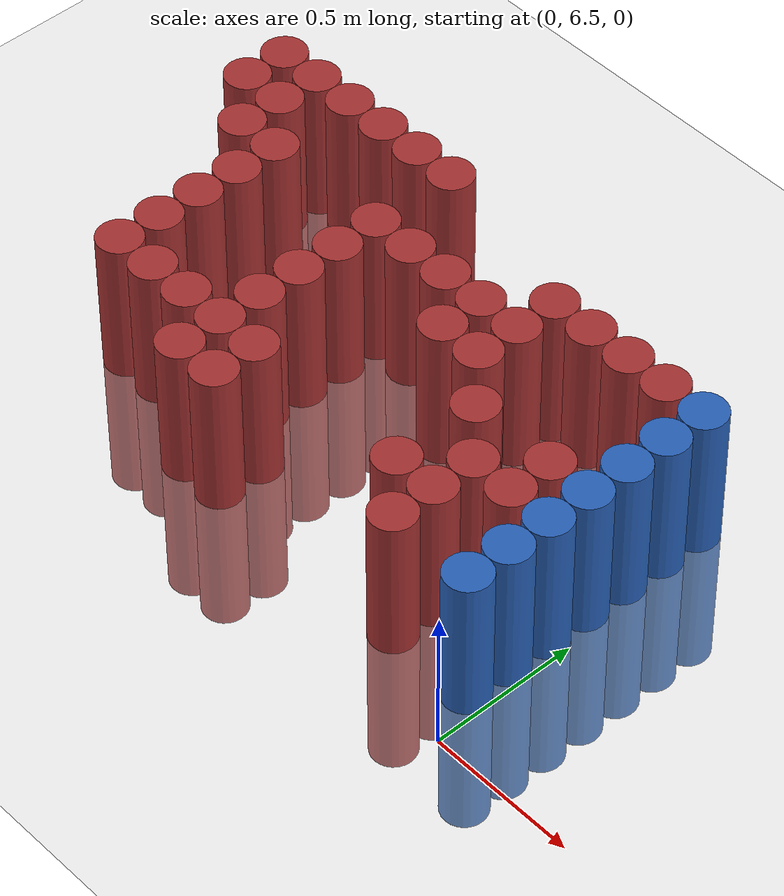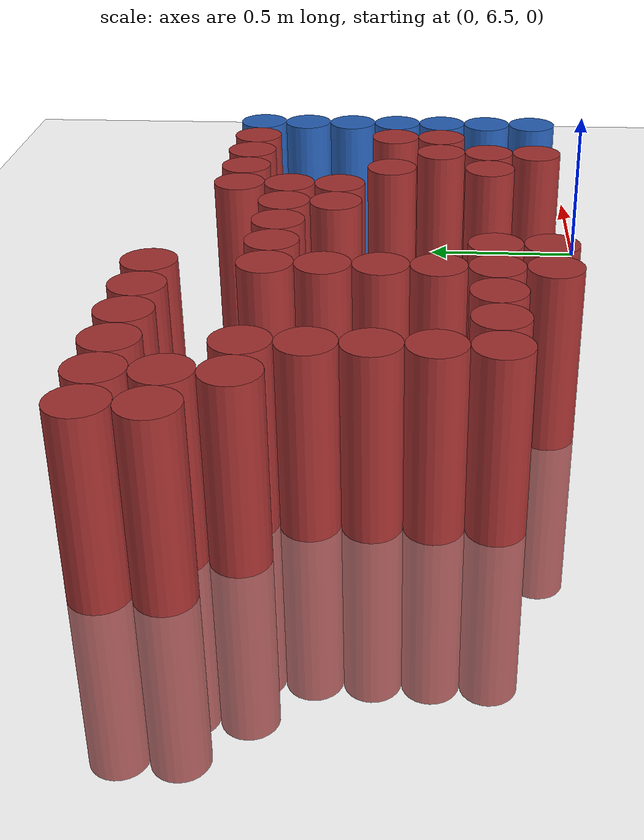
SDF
<sdf version="1.6">
 <world name="default">
  <model name="ground_plane">
   <static>1</static>
   <link name="link">
    <collision name="collision">
     <geometry><plane><normal>0 0 1</normal><size>100 100</size></plane></geometry>
     <surface><friction><ode><mu>100</mu><mu2>50</mu2></ode></friction></surface>
    </collision>
    <visual name="visual">
     <cast_shadows>0</cast_shadows>
     <geometry><plane><normal>0 0 1</normal><size>100 100</size></plane></geometry>
     <material>
      <script><uri>file://media/materials/scripts/gazebo.material</uri><name>Gazebo/Grey</name></script>
     </material>
    </visual>
   </link>
  </model>
  <model name="unit_cylinder_169">
   <static>1</static>
   <pose>-2.025000 7.575000 0.000000 0.000000 0.000000 0.000000</pose>
   <link name="link">
    <inertial>
     <mass>1</mass>
     <inertia><ixx>0.145833</ixx><ixy>0</ixy><ixz>0</ixz><iyy>0.145833</iyy><iyz>0</iyz><izz>0.125</izz></inertia>
    </inertial>
    <collision name="collision">
     <geometry><cylinder><radius>0.075000</radius><length>1</length></cylinder></geometry>
    </collision>
    <visual name="visual">
     <geometry><cylinder><radius>0.075000</radius><length>1</length></cylinder></geometry>
     <material>
      <ambient>0.648000 0.192000 0.192000 1</ambient>
      <diffuse>0.648000 0.192000 0.192000 1</diffuse>
     </material>
     <material>
      <script><name>Gazebo/Grey</name><uri>file://media/materials/scripts/gazebo.material</uri></script>
     </material>
    </visual>
   </link>
  </model>
  <model name="unit_cylinder_170">
   <static>1</static>
   <pose>-2.025000 7.725000 0.000000 0.000000 0.000000 0.000000</pose>
   <link name="link">
    <inertial>
     <mass>1</mass>
     <inertia><ixx>0.145833</ixx><ixy>0</ixy><ixz>0</ixz><iyy>0.145833</iyy><iyz>0</iyz><izz>0.125</izz></inertia>
    </inertial>
    <collision name="collision">
     <geometry><cylinder><radius>0.075000</radius><length>1</length></cylinder></geometry>
    </collision>
    <visual name="visual">
     <geometry><cylinder><radius>0.075000</radius><length>1</length></cylinder></geometry>
     <material>
      <ambient>0.648000 0.192000 0.192000 1</ambient>
      <diffuse>0.648000 0.192000 0.192000 1</diffuse>
     </material>
     <material>
      <script><name>Gazebo/Grey</name><uri>file://media/materials/scripts/gazebo.material</uri></script>
     </material>
    </visual>
   </link>
  </model>
  <model name="unit_cylinder_173">
   <static>1</static>
   <pose>-1.875000 7.425000 0.000000 0.000000 0.000000 0.000000</pose>
   <link name="link">
    <inertial>
     <mass>1</mass>
     <inertia><ixx>0.145833</ixx><ixy>0</ixy><ixz>0</ixz><iyy>0.145833</iyy><iyz>0</iyz><izz>0.125</izz></inertia>
    </inertial>
    <collision name="collision">
     <geometry><cylinder><radius>0.075000</radius><length>1</length></cylinder></geometry>
    </collision>
    <visual name="visual">
     <geometry><cylinder><radius>0.075000</radius><length>1</length></cylinder></geometry>
     <material>
      <ambient>0.648000 0.192000 0.192000 1</ambient>
      <diffuse>0.648000 0.192000 0.192000 1</diffuse>
     </material>
     <material>
      <script><name>Gazebo/Grey</name><uri>file://media/materials/scripts/gazebo.material</uri></script>
     </material>
    </visual>
   </link>
  </model>
  <model name="unit_cylinder_174">
   <static>1</static>
   <pose>-1.875000 7.575000 0.000000 0.000000 0.000000 0.000000</pose>
   <link name="link">
    <inertial>
     <mass>1</mass>
     <inertia><ixx>0.145833</ixx><ixy>0</ixy><ixz>0</ixz><iyy>0.145833</iyy><iyz>0</iyz><izz>0.125</izz></inertia>
    </inertial>
    <collision name="collision">
     <geometry><cylinder><radius>0.075000</radius><length>1</length></cylinder></geometry>
    </collision>
    <visual name="visual">
     <geometry><cylinder><radius>0.075000</radius><length>1</length></cylinder></geometry>
     <material>
      <ambient>0.648000 0.192000 0.192000 1</ambient>
      <diffuse>0.648000 0.192000 0.192000 1</diffuse>
     </material>
     <material>
      <script><name>Gazebo/Grey</name><uri>file://media/materials/scripts/gazebo.material</uri></script>
     </material>
    </visual>
   </link>
  </model>
  <model name="unit_cylinder_175">
   <static>1</static>
   <pose>-1.875000 7.725000 0.000000 0.000000 0.000000 0.000000</pose>
   <link name="link">
    <inertial>
     <mass>1</mass>
     <inertia><ixx>0.145833</ixx><ixy>0</ixy><ixz>0</ixz><iyy>0.145833</iyy><iyz>0</iyz><izz>0.125</izz></inertia>
    </inertial>
    <collision name="collision">
     <geometry><cylinder><radius>0.075000</radius><length>1</length></cylinder></geometry>
    </collision>
    <visual name="visual">
     <geometry><cylinder><radius>0.075000</radius><length>1</length></cylinder></geometry>
     <material>
      <ambient>0.648000 0.192000 0.192000 1</ambient>
      <diffuse>0.648000 0.192000 0.192000 1</diffuse>
     </material>
     <material>
      <script><name>Gazebo/Grey</name><uri>file://media/materials/scripts/gazebo.material</uri></script>
     </material>
    </visual>
   </link>
  </model>
  <model name="unit_cylinder_182">
   <static>1</static>
   <pose>-1.725000 6.825000 0.000000 0.000000 0.000000 0.000000</pose>
   <link name="link">
    <inertial>
     <mass>1</mass>
     <inertia><ixx>0.145833</ixx><ixy>0</ixy><ixz>0</ixz><iyy>0.145833</iyy><iyz>0</iyz><izz>0.125</izz></inertia>
    </inertial>
    <collision name="collision">
     <geometry><cylinder><radius>0.075000</radius><length>1</length></cylinder></geometry>
    </collision>
    <visual name="visual">
     <geometry><cylinder><radius>0.075000</radius><length>1</length></cylinder></geometry>
     <material>
      <ambient>0.648000 0.192000 0.192000 1</ambient>
      <diffuse>0.648000 0.192000 0.192000 1</diffuse>
     </material>
     <material>
      <script><name>Gazebo/Grey</name><uri>file://media/materials/scripts/gazebo.material</uri></script>
     </material>
    </visual>
   </link>
  </model>
  <model name="unit_cylinder_183">
   <static>1</static>
   <pose>-1.725000 6.975000 0.000000 0.000000 0.000000 0.000000</pose>
   <link name="link">
    <inertial>
     <mass>1</mass>
     <inertia><ixx>0.145833</ixx><ixy>0</ixy><ixz>0</ixz><iyy>0.145833</iyy><iyz>0</iyz><izz>0.125</izz></inertia>
    </inertial>
    <collision name="collision">
     <geometry><cylinder><radius>0.075000</radius><length>1</length></cylinder></geometry>
    </collision>
    <visual name="visual">
     <geometry><cylinder><radius>0.075000</radius><length>1</length></cylinder></geometry>
     <material>
      <ambient>0.648000 0.192000 0.192000 1</ambient>
      <diffuse>0.648000 0.192000 0.192000 1</diffuse>
     </material>
     <material>
      <script><name>Gazebo/Grey</name><uri>file://media/materials/scripts/gazebo.material</uri></script>
     </material>
    </visual>
   </link>
  </model>
  <model name="unit_cylinder_184">
   <static>1</static>
   <pose>-1.725000 7.125000 0.000000 0.000000 0.000000 0.000000</pose>
   <link name="link">
    <inertial>
     <mass>1</mass>
     <inertia><ixx>0.145833</ixx><ixy>0</ixy><ixz>0</ixz><iyy>0.145833</iyy><iyz>0</iyz><izz>0.125</izz></inertia>
    </inertial>
    <collision name="collision">
     <geometry><cylinder><radius>0.075000</radius><length>1</length></cylinder></geometry>
    </collision>
    <visual name="visual">
     <geometry><cylinder><radius>0.075000</radius><length>1</length></cylinder></geometry>
     <material>
      <ambient>0.648000 0.192000 0.192000 1</ambient>
      <diffuse>0.648000 0.192000 0.192000 1</diffuse>
     </material>
     <material>
      <script><name>Gazebo/Grey</name><uri>file://media/materials/scripts/gazebo.material</uri></script>
     </material>
    </visual>
   </link>
  </model>
  <model name="unit_cylinder_185">
   <static>1</static>
   <pose>-1.725000 7.275000 0.000000 0.000000 0.000000 0.000000</pose>
   <link name="link">
    <inertial>
     <mass>1</mass>
     <inertia><ixx>0.145833</ixx><ixy>0</ixy><ixz>0</ixz><iyy>0.145833</iyy><iyz>0</iyz><izz>0.125</izz></inertia>
    </inertial>
    <collision name="collision">
     <geometry><cylinder><radius>0.075000</radius><length>1</length></cylinder></geometry>
    </collision>
    <visual name="visual">
     <geometry><cylinder><radius>0.075000</radius><length>1</length></cylinder></geometry>
     <material>
      <ambient>0.648000 0.192000 0.192000 1</ambient>
      <diffuse>0.648000 0.192000 0.192000 1</diffuse>
     </material>
     <material>
      <script><name>Gazebo/Grey</name><uri>file://media/materials/scripts/gazebo.material</uri></script>
     </material>
    </visual>
   </link>
  </model>
  <model name="unit_cylinder_186">
   <static>1</static>
   <pose>-1.725000 7.425000 0.000000 0.000000 0.000000 0.000000</pose>
   <link name="link">
    <inertial>
     <mass>1</mass>
     <inertia><ixx>0.145833</ixx><ixy>0</ixy><ixz>0</ixz><iyy>0.145833</iyy><iyz>0</iyz><izz>0.125</izz></inertia>
    </inertial>
    <collision name="collision">
     <geometry><cylinder><radius>0.075000</radius><length>1</length></cylinder></geometry>
    </collision>
    <visual name="visual">
     <geometry><cylinder><radius>0.075000</radius><length>1</length></cylinder></geometry>
     <material>
      <ambient>0.648000 0.192000 0.192000 1</ambient>
      <diffuse>0.648000 0.192000 0.192000 1</diffuse>
     </material>
     <material>
      <script><name>Gazebo/Grey</name><uri>file://media/materials/scripts/gazebo.material</uri></script>
     </material>
    </visual>
   </link>
  </model>
  <model name="unit_cylinder_187">
   <static>1</static>
   <pose>-1.725000 7.725000 0.000000 0.000000 0.000000 0.000000</pose>
   <link name="link">
    <inertial>
     <mass>1</mass>
     <inertia><ixx>0.145833</ixx><ixy>0</ixy><ixz>0</ixz><iyy>0.145833</iyy><iyz>0</iyz><izz>0.125</izz></inertia>
    </inertial>
    <collision name="collision">
     <geometry><cylinder><radius>0.075000</radius><length>1</length></cylinder></geometry>
    </collision>
    <visual name="visual">
     <geometry><cylinder><radius>0.075000</radius><length>1</length></cylinder></geometry>
     <material>
      <ambient>0.648000 0.192000 0.192000 1</ambient>
      <diffuse>0.648000 0.192000 0.192000 1</diffuse>
     </material>
     <material>
      <script><name>Gazebo/Grey</name><uri>file://media/materials/scripts/gazebo.material</uri></script>
     </material>
    </visual>
   </link>
  </model>
  <model name="unit_cylinder_191">
   <static>1</static>
   <pose>-1.575000 6.825000 0.000000 0.000000 0.000000 0.000000</pose>
   <link name="link">
    <inertial>
     <mass>1</mass>
     <inertia><ixx>0.145833</ixx><ixy>0</ixy><ixz>0</ixz><iyy>0.145833</iyy><iyz>0</iyz><izz>0.125</izz></inertia>
    </inertial>
    <collision name="collision">
     <geometry><cylinder><radius>0.075000</radius><length>1</length></cylinder></geometry>
    </collision>
    <visual name="visual">
     <geometry><cylinder><radius>0.075000</radius><length>1</length></cylinder></geometry>
     <material>
      <ambient>0.648000 0.192000 0.192000 1</ambient>
      <diffuse>0.648000 0.192000 0.192000 1</diffuse>
     </material>
     <material>
      <script><name>Gazebo/Grey</name><uri>file://media/materials/scripts/gazebo.material</uri></script>
     </material>
    </visual>
   </link>
  </model>
  <model name="unit_cylinder_192">
   <static>1</static>
   <pose>-1.575000 7.725000 0.000000 0.000000 0.000000 0.000000</pose>
   <link name="link">
    <inertial>
     <mass>1</mass>
     <inertia><ixx>0.145833</ixx><ixy>0</ixy><ixz>0</ixz><iyy>0.145833</iyy><iyz>0</iyz><izz>0.125</izz></inertia>
    </inertial>
    <collision name="collision">
     <geometry><cylinder><radius>0.075000</radius><length>1</length></cylinder></geometry>
    </collision>
    <visual name="visual">
     <geometry><cylinder><radius>0.075000</radius><length>1</length></cylinder></geometry>
     <material>
      <ambient>0.648000 0.192000 0.192000 1</ambient>
      <diffuse>0.648000 0.192000 0.192000 1</diffuse>
     </material>
     <material>
      <script><name>Gazebo/Grey</name><uri>file://media/materials/scripts/gazebo.material</uri></script>
     </material>
    </visual>
   </link>
  </model>
  <model name="unit_cylinder_195">
   <static>1</static>
   <pose>-1.425000 6.825000 0.000000 0.000000 0.000000 0.000000</pose>
   <link name="link">
    <inertial>
     <mass>1</mass>
     <inertia><ixx>0.145833</ixx><ixy>0</ixy><ixz>0</ixz><iyy>0.145833</iyy><iyz>0</iyz><izz>0.125</izz></inertia>
    </inertial>
    <collision name="collision">
     <geometry><cylinder><radius>0.075000</radius><length>1</length></cylinder></geometry>
    </collision>
    <visual name="visual">
     <geometry><cylinder><radius>0.075000</radius><length>1</length></cylinder></geometry>
     <material>
      <ambient>0.648000 0.192000 0.192000 1</ambient>
      <diffuse>0.648000 0.192000 0.192000 1</diffuse>
     </material>
     <material>
      <script><name>Gazebo/Grey</name><uri>file://media/materials/scripts/gazebo.material</uri></script>
     </material>
    </visual>
   </link>
  </model>
  <model name="unit_cylinder_196">
   <static>1</static>
   <pose>-1.425000 7.725000 0.000000 0.000000 0.000000 0.000000</pose>
   <link name="link">
    <inertial>
     <mass>1</mass>
     <inertia><ixx>0.145833</ixx><ixy>0</ixy><ixz>0</ixz><iyy>0.145833</iyy><iyz>0</iyz><izz>0.125</izz></inertia>
    </inertial>
    <collision name="collision">
     <geometry><cylinder><radius>0.075000</radius><length>1</length></cylinder></geometry>
    </collision>
    <visual name="visual">
     <geometry><cylinder><radius>0.075000</radius><length>1</length></cylinder></geometry>
     <material>
      <ambient>0.648000 0.192000 0.192000 1</ambient>
      <diffuse>0.648000 0.192000 0.192000 1</diffuse>
     </material>
     <material>
      <script><name>Gazebo/Grey</name><uri>file://media/materials/scripts/gazebo.material</uri></script>
     </material>
    </visual>
   </link>
  </model>
  <model name="unit_cylinder_199">
   <static>1</static>
   <pose>-1.275000 6.675000 0.000000 0.000000 0.000000 0.000000</pose>
   <link name="link">
    <inertial>
     <mass>1</mass>
     <inertia><ixx>0.145833</ixx><ixy>0</ixy><ixz>0</ixz><iyy>0.145833</iyy><iyz>0</iyz><izz>0.125</izz></inertia>
    </inertial>
    <collision name="collision">
     <geometry><cylinder><radius>0.075000</radius><length>1</length></cylinder></geometry>
    </collision>
    <visual name="visual">
     <geometry><cylinder><radius>0.075000</radius><length>1</length></cylinder></geometry>
     <material>
      <ambient>0.648000 0.192000 0.192000 1</ambient>
      <diffuse>0.648000 0.192000 0.192000 1</diffuse>
     </material>
     <material>
      <script><name>Gazebo/Grey</name><uri>file://media/materials/scripts/gazebo.material</uri></script>
     </material>
    </visual>
   </link>
  </model>
  <model name="unit_cylinder_200">
   <static>1</static>
   <pose>-1.275000 6.825000 0.000000 0.000000 0.000000 0.000000</pose>
   <link name="link">
    <inertial>
     <mass>1</mass>
     <inertia><ixx>0.145833</ixx><ixy>0</ixy><ixz>0</ixz><iyy>0.145833</iyy><iyz>0</iyz><izz>0.125</izz></inertia>
    </inertial>
    <collision name="collision">
     <geometry><cylinder><radius>0.075000</radius><length>1</length></cylinder></geometry>
    </collision>
    <visual name="visual">
     <geometry><cylinder><radius>0.075000</radius><length>1</length></cylinder></geometry>
     <material>
      <ambient>0.648000 0.192000 0.192000 1</ambient>
      <diffuse>0.648000 0.192000 0.192000 1</diffuse>
     </material>
     <material>
      <script><name>Gazebo/Grey</name><uri>file://media/materials/scripts/gazebo.material</uri></script>
     </material>
    </visual>
   </link>
  </model>
  <model name="unit_cylinder_201">
   <static>1</static>
   <pose>-1.275000 6.975000 0.000000 0.000000 0.000000 0.000000</pose>
   <link name="link">
    <inertial>
     <mass>1</mass>
     <inertia><ixx>0.145833</ixx><ixy>0</ixy><ixz>0</ixz><iyy>0.145833</iyy><iyz>0</iyz><izz>0.125</izz></inertia>
    </inertial>
    <collision name="collision">
     <geometry><cylinder><radius>0.075000</radius><length>1</length></cylinder></geometry>
    </collision>
    <visual name="visual">
     <geometry><cylinder><radius>0.075000</radius><length>1</length></cylinder></geometry>
     <material>
      <ambient>0.648000 0.192000 0.192000 1</ambient>
      <diffuse>0.648000 0.192000 0.192000 1</diffuse>
     </material>
     <material>
      <script><name>Gazebo/Grey</name><uri>file://media/materials/scripts/gazebo.material</uri></script>
     </material>
    </visual>
   </link>
  </model>
  <model name="unit_cylinder_202">
   <static>1</static>
   <pose>-1.275000 7.125000 0.000000 0.000000 0.000000 0.000000</pose>
   <link name="link">
    <inertial>
     <mass>1</mass>
     <inertia><ixx>0.145833</ixx><ixy>0</ixy><ixz>0</ixz><iyy>0.145833</iyy><iyz>0</iyz><izz>0.125</izz></inertia>
    </inertial>
    <collision name="collision">
     <geometry><cylinder><radius>0.075000</radius><length>1</length></cylinder></geometry>
    </collision>
    <visual name="visual">
     <geometry><cylinder><radius>0.075000</radius><length>1</length></cylinder></geometry>
     <material>
      <ambient>0.648000 0.192000 0.192000 1</ambient>
      <diffuse>0.648000 0.192000 0.192000 1</diffuse>
     </material>
     <material>
      <script><name>Gazebo/Grey</name><uri>file://media/materials/scripts/gazebo.material</uri></script>
     </material>
    </visual>
   </link>
  </model>
  <model name="unit_cylinder_203">
   <static>1</static>
   <pose>-1.275000 7.275000 0.000000 0.000000 0.000000 0.000000</pose>
   <link name="link">
    <inertial>
     <mass>1</mass>
     <inertia><ixx>0.145833</ixx><ixy>0</ixy><ixz>0</ixz><iyy>0.145833</iyy><iyz>0</iyz><izz>0.125</izz></inertia>
    </inertial>
    <collision name="collision">
     <geometry><cylinder><radius>0.075000</radius><length>1</length></cylinder></geometry>
    </collision>
    <visual name="visual">
     <geometry><cylinder><radius>0.075000</radius><length>1</length></cylinder></geometry>
     <material>
      <ambient>0.648000 0.192000 0.192000 1</ambient>
      <diffuse>0.648000 0.192000 0.192000 1</diffuse>
     </material>
     <material>
      <script><name>Gazebo/Grey</name><uri>file://media/materials/scripts/gazebo.material</uri></script>
     </material>
    </visual>
   </link>
  </model>
  <model name="unit_cylinder_204">
   <static>1</static>
   <pose>-1.275000 7.425000 0.000000 0.000000 0.000000 0.000000</pose>
   <link name="link">
    <inertial>
     <mass>1</mass>
     <inertia><ixx>0.145833</ixx><ixy>0</ixy><ixz>0</ixz><iyy>0.145833</iyy><iyz>0</iyz><izz>0.125</izz></inertia>
    </inertial>
    <collision name="collision">
     <geometry><cylinder><radius>0.075000</radius><length>1</length></cylinder></geometry>
    </collision>
    <visual name="visual">
     <geometry><cylinder><radius>0.075000</radius><length>1</length></cylinder></geometry>
     <material>
      <ambient>0.648000 0.192000 0.192000 1</ambient>
      <diffuse>0.648000 0.192000 0.192000 1</diffuse>
     </material>
     <material>
      <script><name>Gazebo/Grey</name><uri>file://media/materials/scripts/gazebo.material</uri></script>
     </material>
    </visual>
   </link>
  </model>
  <model name="unit_cylinder_205">
   <static>1</static>
   <pose>-1.275000 7.725000 0.000000 0.000000 0.000000 0.000000</pose>
   <link name="link">
    <inertial>
     <mass>1</mass>
     <inertia><ixx>0.145833</ixx><ixy>0</ixy><ixz>0</ixz><iyy>0.145833</iyy><iyz>0</iyz><izz>0.125</izz></inertia>
    </inertial>
    <collision name="collision">
     <geometry><cylinder><radius>0.075000</radius><length>1</length></cylinder></geometry>
    </collision>
    <visual name="visual">
     <geometry><cylinder><radius>0.075000</radius><length>1</length></cylinder></geometry>
     <material>
      <ambient>0.648000 0.192000 0.192000 1</ambient>
      <diffuse>0.648000 0.192000 0.192000 1</diffuse>
     </material>
     <material>
      <script><name>Gazebo/Grey</name><uri>file://media/materials/scripts/gazebo.material</uri></script>
     </material>
    </visual>
   </link>
  </model>
  <model name="unit_cylinder_207">
   <static>1</static>
   <pose>-1.125000 6.675000 0.000000 0.000000 0.000000 0.000000</pose>
   <link name="link">
    <inertial>
     <mass>1</mass>
     <inertia><ixx>0.145833</ixx><ixy>0</ixy><ixz>0</ixz><iyy>0.145833</iyy><iyz>0</iyz><izz>0.125</izz></inertia>
    </inertial>
    <collision name="collision">
     <geometry><cylinder><radius>0.075000</radius><length>1</length></cylinder></geometry>
    </collision>
    <visual name="visual">
     <geometry><cylinder><radius>0.075000</radius><length>1</length></cylinder></geometry>
     <material>
      <ambient>0.648000 0.192000 0.192000 1</ambient>
      <diffuse>0.648000 0.192000 0.192000 1</diffuse>
     </material>
     <material>
      <script><name>Gazebo/Grey</name><uri>file://media/materials/scripts/gazebo.material</uri></script>
     </material>
    </visual>
   </link>
  </model>
  <model name="unit_cylinder_208">
   <static>1</static>
   <pose>-1.125000 6.825000 0.000000 0.000000 0.000000 0.000000</pose>
   <link name="link">
    <inertial>
     <mass>1</mass>
     <inertia><ixx>0.145833</ixx><ixy>0</ixy><ixz>0</ixz><iyy>0.145833</iyy><iyz>0</iyz><izz>0.125</izz></inertia>
    </inertial>
    <collision name="collision">
     <geometry><cylinder><radius>0.075000</radius><length>1</length></cylinder></geometry>
    </collision>
    <visual name="visual">
     <geometry><cylinder><radius>0.075000</radius><length>1</length></cylinder></geometry>
     <material>
      <ambient>0.648000 0.192000 0.192000 1</ambient>
      <diffuse>0.648000 0.192000 0.192000 1</diffuse>
     </material>
     <material>
      <script><name>Gazebo/Grey</name><uri>file://media/materials/scripts/gazebo.material</uri></script>
     </material>
    </visual>
   </link>
  </model>
  <model name="unit_cylinder_209">
   <static>1</static>
   <pose>-1.125000 7.425000 0.000000 0.000000 0.000000 0.000000</pose>
   <link name="link">
    <inertial>
     <mass>1</mass>
     <inertia><ixx>0.145833</ixx><ixy>0</ixy><ixz>0</ixz><iyy>0.145833</iyy><iyz>0</iyz><izz>0.125</izz></inertia>
    </inertial>
    <collision name="collision">
     <geometry><cylinder><radius>0.075000</radius><length>1</length></cylinder></geometry>
    </collision>
    <visual name="visual">
     <geometry><cylinder><radius>0.075000</radius><length>1</length></cylinder></geometry>
     <material>
      <ambient>0.648000 0.192000 0.192000 1</ambient>
      <diffuse>0.648000 0.192000 0.192000 1</diffuse>
     </material>
     <material>
      <script><name>Gazebo/Grey</name><uri>file://media/materials/scripts/gazebo.material</uri></script>
     </material>
    </visual>
   </link>
  </model>
  <model name="unit_cylinder_213">
   <static>1</static>
   <pose>-0.975000 7.425000 0.000000 0.000000 0.000000 0.000000</pose>
   <link name="link">
    <inertial>
     <mass>1</mass>
     <inertia><ixx>0.145833</ixx><ixy>0</ixy><ixz>0</ixz><iyy>0.145833</iyy><iyz>0</iyz><izz>0.125</izz></inertia>
    </inertial>
    <collision name="collision">
     <geometry><cylinder><radius>0.075000</radius><length>1</length></cylinder></geometry>
    </collision>
    <visual name="visual">
     <geometry><cylinder><radius>0.075000</radius><length>1</length></cylinder></geometry>
     <material>
      <ambient>0.648000 0.192000 0.192000 1</ambient>
      <diffuse>0.648000 0.192000 0.192000 1</diffuse>
     </material>
     <material>
      <script><name>Gazebo/Grey</name><uri>file://media/materials/scripts/gazebo.material</uri></script>
     </material>
    </visual>
   </link>
  </model>
  <model name="unit_cylinder_217">
   <static>1</static>
   <pose>-0.825000 7.275000 0.000000 0.000000 0.000000 0.000000</pose>
   <link name="link">
    <inertial>
     <mass>1</mass>
     <inertia><ixx>0.145833</ixx><ixy>0</ixy><ixz>0</ixz><iyy>0.145833</iyy><iyz>0</iyz><izz>0.125</izz></inertia>
    </inertial>
    <collision name="collision">
     <geometry><cylinder><radius>0.075000</radius><length>1</length></cylinder></geometry>
    </collision>
    <visual name="visual">
     <geometry><cylinder><radius>0.075000</radius><length>1</length></cylinder></geometry>
     <material>
      <ambient>0.648000 0.192000 0.192000 1</ambient>
      <diffuse>0.648000 0.192000 0.192000 1</diffuse>
     </material>
     <material>
      <script><name>Gazebo/Grey</name><uri>file://media/materials/scripts/gazebo.material</uri></script>
     </material>
    </visual>
   </link>
  </model>
  <model name="unit_cylinder_218">
   <static>1</static>
   <pose>-0.825000 7.425000 0.000000 0.000000 0.000000 0.000000</pose>
   <link name="link">
    <inertial>
     <mass>1</mass>
     <inertia><ixx>0.145833</ixx><ixy>0</ixy><ixz>0</ixz><iyy>0.145833</iyy><iyz>0</iyz><izz>0.125</izz></inertia>
    </inertial>
    <collision name="collision">
     <geometry><cylinder><radius>0.075000</radius><length>1</length></cylinder></geometry>
    </collision>
    <visual name="visual">
     <geometry><cylinder><radius>0.075000</radius><length>1</length></cylinder></geometry>
     <material>
      <ambient>0.648000 0.192000 0.192000 1</ambient>
      <diffuse>0.648000 0.192000 0.192000 1</diffuse>
     </material>
     <material>
      <script><name>Gazebo/Grey</name><uri>file://media/materials/scripts/gazebo.material</uri></script>
     </material>
    </visual>
   </link>
  </model>
  <model name="unit_cylinder_222">
   <static>1</static>
   <pose>-0.675000 7.275000 0.000000 0.000000 0.000000 0.000000</pose>
   <link name="link">
    <inertial>
     <mass>1</mass>
     <inertia><ixx>0.145833</ixx><ixy>0</ixy><ixz>0</ixz><iyy>0.145833</iyy><iyz>0</iyz><izz>0.125</izz></inertia>
    </inertial>
    <collision name="collision">
     <geometry><cylinder><radius>0.075000</radius><length>1</length></cylinder></geometry>
    </collision>
    <visual name="visual">
     <geometry><cylinder><radius>0.075000</radius><length>1</length></cylinder></geometry>
     <material>
      <ambient>0.648000 0.192000 0.192000 1</ambient>
      <diffuse>0.648000 0.192000 0.192000 1</diffuse>
     </material>
     <material>
      <script><name>Gazebo/Grey</name><uri>file://media/materials/scripts/gazebo.material</uri></script>
     </material>
    </visual>
   </link>
  </model>
  <model name="unit_cylinder_223">
   <static>1</static>
   <pose>-0.675000 7.425000 0.000000 0.000000 0.000000 0.000000</pose>
   <link name="link">
    <inertial>
     <mass>1</mass>
     <inertia><ixx>0.145833</ixx><ixy>0</ixy><ixz>0</ixz><iyy>0.145833</iyy><iyz>0</iyz><izz>0.125</izz></inertia>
    </inertial>
    <collision name="collision">
     <geometry><cylinder><radius>0.075000</radius><length>1</length></cylinder></geometry>
    </collision>
    <visual name="visual">
     <geometry><cylinder><radius>0.075000</radius><length>1</length></cylinder></geometry>
     <material>
      <ambient>0.648000 0.192000 0.192000 1</ambient>
      <diffuse>0.648000 0.192000 0.192000 1</diffuse>
     </material>
     <material>
      <script><name>Gazebo/Grey</name><uri>file://media/materials/scripts/gazebo.material</uri></script>
     </material>
    </visual>
   </link>
  </model>
  <model name="unit_cylinder_224">
   <static>1</static>
   <pose>-0.675000 7.575000 0.000000 0.000000 0.000000 0.000000</pose>
   <link name="link">
    <inertial>
     <mass>1</mass>
     <inertia><ixx>0.145833</ixx><ixy>0</ixy><ixz>0</ixz><iyy>0.145833</iyy><iyz>0</iyz><izz>0.125</izz></inertia>
    </inertial>
    <collision name="collision">
     <geometry><cylinder><radius>0.075000</radius><length>1</length></cylinder></geometry>
    </collision>
    <visual name="visual">
     <geometry><cylinder><radius>0.075000</radius><length>1</length></cylinder></geometry>
     <material>
      <ambient>0.648000 0.192000 0.192000 1</ambient>
      <diffuse>0.648000 0.192000 0.192000 1</diffuse>
     </material>
     <material>
      <script><name>Gazebo/Grey</name><uri>file://media/materials/scripts/gazebo.material</uri></script>
     </material>
    </visual>
   </link>
  </model>
  <model name="unit_cylinder_232">
   <static>1</static>
   <pose>-0.525000 6.825000 0.000000 0.000000 0.000000 0.000000</pose>
   <link name="link">
    <inertial>
     <mass>1</mass>
     <inertia><ixx>0.145833</ixx><ixy>0</ixy><ixz>0</ixz><iyy>0.145833</iyy><iyz>0</iyz><izz>0.125</izz></inertia>
    </inertial>
    <collision name="collision">
     <geometry><cylinder><radius>0.075000</radius><length>1</length></cylinder></geometry>
    </collision>
    <visual name="visual">
     <geometry><cylinder><radius>0.075000</radius><length>1</length></cylinder></geometry>
     <material>
      <ambient>0.648000 0.192000 0.192000 1</ambient>
      <diffuse>0.648000 0.192000 0.192000 1</diffuse>
     </material>
     <material>
      <script><name>Gazebo/Grey</name><uri>file://media/materials/scripts/gazebo.material</uri></script>
     </material>
    </visual>
   </link>
  </model>
  <model name="unit_cylinder_233">
   <static>1</static>
   <pose>-0.525000 7.125000 0.000000 0.000000 0.000000 0.000000</pose>
   <link name="link">
    <inertial>
     <mass>1</mass>
     <inertia><ixx>0.145833</ixx><ixy>0</ixy><ixz>0</ixz><iyy>0.145833</iyy><iyz>0</iyz><izz>0.125</izz></inertia>
    </inertial>
    <collision name="collision">
     <geometry><cylinder><radius>0.075000</radius><length>1</length></cylinder></geometry>
    </collision>
    <visual name="visual">
     <geometry><cylinder><radius>0.075000</radius><length>1</length></cylinder></geometry>
     <material>
      <ambient>0.648000 0.192000 0.192000 1</ambient>
      <diffuse>0.648000 0.192000 0.192000 1</diffuse>
     </material>
     <material>
      <script><name>Gazebo/Grey</name><uri>file://media/materials/scripts/gazebo.material</uri></script>
     </material>
    </visual>
   </link>
  </model>
  <model name="unit_cylinder_234">
   <static>1</static>
   <pose>-0.525000 7.575000 0.000000 0.000000 0.000000 0.000000</pose>
   <link name="link">
    <inertial>
     <mass>1</mass>
     <inertia><ixx>0.145833</ixx><ixy>0</ixy><ixz>0</ixz><iyy>0.145833</iyy><iyz>0</iyz><izz>0.125</izz></inertia>
    </inertial>
    <collision name="collision">
     <geometry><cylinder><radius>0.075000</radius><length>1</length></cylinder></geometry>
    </collision>
    <visual name="visual">
     <geometry><cylinder><radius>0.075000</radius><length>1</length></cylinder></geometry>
     <material>
      <ambient>0.648000 0.192000 0.192000 1</ambient>
      <diffuse>0.648000 0.192000 0.192000 1</diffuse>
     </material>
     <material>
      <script><name>Gazebo/Grey</name><uri>file://media/materials/scripts/gazebo.material</uri></script>
     </material>
    </visual>
   </link>
  </model>
  <model name="unit_cylinder_243">
   <static>1</static>
   <pose>-0.375000 6.675000 0.000000 0.000000 0.000000 0.000000</pose>
   <link name="link">
    <inertial>
     <mass>1</mass>
     <inertia><ixx>0.145833</ixx><ixy>0</ixy><ixz>0</ixz><iyy>0.145833</iyy><iyz>0</iyz><izz>0.125</izz></inertia>
    </inertial>
    <collision name="collision">
     <geometry><cylinder><radius>0.075000</radius><length>1</length></cylinder></geometry>
    </collision>
    <visual name="visual">
     <geometry><cylinder><radius>0.075000</radius><length>1</length></cylinder></geometry>
     <material>
      <ambient>0.648000 0.192000 0.192000 1</ambient>
      <diffuse>0.648000 0.192000 0.192000 1</diffuse>
     </material>
     <material>
      <script><name>Gazebo/Grey</name><uri>file://media/materials/scripts/gazebo.material</uri></script>
     </material>
    </visual>
   </link>
  </model>
  <model name="unit_cylinder_244">
   <static>1</static>
   <pose>-0.375000 6.825000 0.000000 0.000000 0.000000 0.000000</pose>
   <link name="link">
    <inertial>
     <mass>1</mass>
     <inertia><ixx>0.145833</ixx><ixy>0</ixy><ixz>0</ixz><iyy>0.145833</iyy><iyz>0</iyz><izz>0.125</izz></inertia>
    </inertial>
    <collision name="collision">
     <geometry><cylinder><radius>0.075000</radius><length>1</length></cylinder></geometry>
    </collision>
    <visual name="visual">
     <geometry><cylinder><radius>0.075000</radius><length>1</length></cylinder></geometry>
     <material>
      <ambient>0.648000 0.192000 0.192000 1</ambient>
      <diffuse>0.648000 0.192000 0.192000 1</diffuse>
     </material>
     <material>
      <script><name>Gazebo/Grey</name><uri>file://media/materials/scripts/gazebo.material</uri></script>
     </material>
    </visual>
   </link>
  </model>
  <model name="unit_cylinder_245">
   <static>1</static>
   <pose>-0.375000 6.975000 0.000000 0.000000 0.000000 0.000000</pose>
   <link name="link">
    <inertial>
     <mass>1</mass>
     <inertia><ixx>0.145833</ixx><ixy>0</ixy><ixz>0</ixz><iyy>0.145833</iyy><iyz>0</iyz><izz>0.125</izz></inertia>
    </inertial>
    <collision name="collision">
     <geometry><cylinder><radius>0.075000</radius><length>1</length></cylinder></geometry>
    </collision>
    <visual name="visual">
     <geometry><cylinder><radius>0.075000</radius><length>1</length></cylinder></geometry>
     <material>
      <ambient>0.648000 0.192000 0.192000 1</ambient>
      <diffuse>0.648000 0.192000 0.192000 1</diffuse>
     </material>
     <material>
      <script><name>Gazebo/Grey</name><uri>file://media/materials/scripts/gazebo.material</uri></script>
     </material>
    </visual>
   </link>
  </model>
  <model name="unit_cylinder_246">
   <static>1</static>
   <pose>-0.375000 7.575000 0.000000 0.000000 0.000000 0.000000</pose>
   <link name="link">
    <inertial>
     <mass>1</mass>
     <inertia><ixx>0.145833</ixx><ixy>0</ixy><ixz>0</ixz><iyy>0.145833</iyy><iyz>0</iyz><izz>0.125</izz></inertia>
    </inertial>
    <collision name="collision">
     <geometry><cylinder><radius>0.075000</radius><length>1</length></cylinder></geometry>
    </collision>
    <visual name="visual">
     <geometry><cylinder><radius>0.075000</radius><length>1</length></cylinder></geometry>
     <material>
      <ambient>0.648000 0.192000 0.192000 1</ambient>
      <diffuse>0.648000 0.192000 0.192000 1</diffuse>
     </material>
     <material>
      <script><name>Gazebo/Grey</name><uri>file://media/materials/scripts/gazebo.material</uri></script>
     </material>
    </visual>
   </link>
  </model>
  <model name="unit_cylinder_256">
   <static>1</static>
   <pose>-0.225000 6.975000 0.000000 0.000000 0.000000 0.000000</pose>
   <link name="link">
    <inertial>
     <mass>1</mass>
     <inertia><ixx>0.145833</ixx><ixy>0</ixy><ixz>0</ixz><iyy>0.145833</iyy><iyz>0</iyz><izz>0.125</izz></inertia>
    </inertial>
    <collision name="collision">
     <geometry><cylinder><radius>0.075000</radius><length>1</length></cylinder></geometry>
    </collision>
    <visual name="visual">
     <geometry><cylinder><radius>0.075000</radius><length>1</length></cylinder></geometry>
     <material>
      <ambient>0.648000 0.192000 0.192000 1</ambient>
      <diffuse>0.648000 0.192000 0.192000 1</diffuse>
     </material>
     <material>
      <script><name>Gazebo/Grey</name><uri>file://media/materials/scripts/gazebo.material</uri></script>
     </material>
    </visual>
   </link>
  </model>
  <model name="unit_cylinder_257">
   <static>1</static>
   <pose>-0.225000 7.125000 0.000000 0.000000 0.000000 0.000000</pose>
   <link name="link">
    <inertial>
     <mass>1</mass>
     <inertia><ixx>0.145833</ixx><ixy>0</ixy><ixz>0</ixz><iyy>0.145833</iyy><iyz>0</iyz><izz>0.125</izz></inertia>
    </inertial>
    <collision name="collision">
     <geometry><cylinder><radius>0.075000</radius><length>1</length></cylinder></geometry>
    </collision>
    <visual name="visual">
     <geometry><cylinder><radius>0.075000</radius><length>1</length></cylinder></geometry>
     <material>
      <ambient>0.648000 0.192000 0.192000 1</ambient>
      <diffuse>0.648000 0.192000 0.192000 1</diffuse>
     </material>
     <material>
      <script><name>Gazebo/Grey</name><uri>file://media/materials/scripts/gazebo.material</uri></script>
     </material>
    </visual>
   </link>
  </model>
  <model name="unit_cylinder_258">
   <static>1</static>
   <pose>-0.225000 7.575000 0.000000 0.000000 0.000000 0.000000</pose>
   <link name="link">
    <inertial>
     <mass>1</mass>
     <inertia><ixx>0.145833</ixx><ixy>0</ixy><ixz>0</ixz><iyy>0.145833</iyy><iyz>0</iyz><izz>0.125</izz></inertia>
    </inertial>
    <collision name="collision">
     <geometry><cylinder><radius>0.075000</radius><length>1</length></cylinder></geometry>
    </collision>
    <visual name="visual">
     <geometry><cylinder><radius>0.075000</radius><length>1</length></cylinder></geometry>
     <material>
      <ambient>0.648000 0.192000 0.192000 1</ambient>
      <diffuse>0.648000 0.192000 0.192000 1</diffuse>
     </material>
     <material>
      <script><name>Gazebo/Grey</name><uri>file://media/materials/scripts/gazebo.material</uri></script>
     </material>
    </visual>
   </link>
  </model>
  <model name="unit_cylinder_272">
   <static>1</static>
   <pose>-0.075000 6.675000 0.000000 0.000000 0.000000 0.000000</pose>
   <link name="link">
    <inertial>
     <mass>1</mass>
     <inertia><ixx>0.145833</ixx><ixy>0</ixy><ixz>0</ixz><iyy>0.145833</iyy><iyz>0</iyz><izz>0.125</izz></inertia>
    </inertial>
    <collision name="collision">
     <geometry><cylinder><radius>0.075000</radius><length>1</length></cylinder></geometry>
    </collision>
    <visual name="visual">
     <geometry><cylinder><radius>0.075000</radius><length>1</length></cylinder></geometry>
     <material>
      <ambient>0.152000 0.379000 0.720000 1</ambient>
      <diffuse>0.152000 0.379000 0.720000 1</diffuse>
     </material>
     <material>
      <script><name>Gazebo/Grey</name><uri>file://media/materials/scripts/gazebo.material</uri></script>
     </material>
    </visual>
   </link>
  </model>
  <model name="unit_cylinder_273">
   <static>1</static>
   <pose>-0.075000 6.825000 0.000000 0.000000 0.000000 0.000000</pose>
   <link name="link">
    <inertial>
     <mass>1</mass>
     <inertia><ixx>0.145833</ixx><ixy>0</ixy><ixz>0</ixz><iyy>0.145833</iyy><iyz>0</iyz><izz>0.125</izz></inertia>
    </inertial>
    <collision name="collision">
     <geometry><cylinder><radius>0.075000</radius><length>1</length></cylinder></geometry>
    </collision>
    <visual name="visual">
     <geometry><cylinder><radius>0.075000</radius><length>1</length></cylinder></geometry>
     <material>
      <ambient>0.152000 0.379000 0.720000 1</ambient>
      <diffuse>0.152000 0.379000 0.720000 1</diffuse>
     </material>
     <material>
      <script><name>Gazebo/Grey</name><uri>file://media/materials/scripts/gazebo.material</uri></script>
     </material>
    </visual>
   </link>
  </model>
  <model name="unit_cylinder_274">
   <static>1</static>
   <pose>-0.075000 6.975000 0.000000 0.000000 0.000000 0.000000</pose>
   <link name="link">
    <inertial>
     <mass>1</mass>
     <inertia><ixx>0.145833</ixx><ixy>0</ixy><ixz>0</ixz><iyy>0.145833</iyy><iyz>0</iyz><izz>0.125</izz></inertia>
    </inertial>
    <collision name="collision">
     <geometry><cylinder><radius>0.075000</radius><length>1</length></cylinder></geometry>
    </collision>
    <visual name="visual">
     <geometry><cylinder><radius>0.075000</radius><length>1</length></cylinder></geometry>
     <material>
      <ambient>0.152000 0.379000 0.720000 1</ambient>
      <diffuse>0.152000 0.379000 0.720000 1</diffuse>
     </material>
     <material>
      <script><name>Gazebo/Grey</name><uri>file://media/materials/scripts/gazebo.material</uri></script>
     </material>
    </visual>
   </link>
  </model>
  <model name="unit_cylinder_275">
   <static>1</static>
   <pose>-0.075000 7.125000 0.000000 0.000000 0.000000 0.000000</pose>
   <link name="link">
    <inertial>
     <mass>1</mass>
     <inertia><ixx>0.145833</ixx><ixy>0</ixy><ixz>0</ixz><iyy>0.145833</iyy><iyz>0</iyz><izz>0.125</izz></inertia>
    </inertial>
    <collision name="collision">
     <geometry><cylinder><radius>0.075000</radius><length>1</length></cylinder></geometry>
    </collision>
    <visual name="visual">
     <geometry><cylinder><radius>0.075000</radius><length>1</length></cylinder></geometry>
     <material>
      <ambient>0.152000 0.379000 0.720000 1</ambient>
      <diffuse>0.152000 0.379000 0.720000 1</diffuse>
     </material>
     <material>
      <script><name>Gazebo/Grey</name><uri>file://media/materials/scripts/gazebo.material</uri></script>
     </material>
    </visual>
   </link>
  </model>
  <model name="unit_cylinder_276">
   <static>1</static>
   <pose>-0.075000 7.275000 0.000000 0.000000 0.000000 0.000000</pose>
   <link name="link">
    <inertial>
     <mass>1</mass>
     <inertia><ixx>0.145833</ixx><ixy>0</ixy><ixz>0</ixz><iyy>0.145833</iyy><iyz>0</iyz><izz>0.125</izz></inertia>
    </inertial>
    <collision name="collision">
     <geometry><cylinder><radius>0.075000</radius><length>1</length></cylinder></geometry>
    </collision>
    <visual name="visual">
     <geometry><cylinder><radius>0.075000</radius><length>1</length></cylinder></geometry>
     <material>
      <ambient>0.152000 0.379000 0.720000 1</ambient>
      <diffuse>0.152000 0.379000 0.720000 1</diffuse>
     </material>
     <material>
      <script><name>Gazebo/Grey</name><uri>file://media/materials/scripts/gazebo.material</uri></script>
     </material>
    </visual>
   </link>
  </model>
  <model name="unit_cylinder_277">
   <static>1</static>
   <pose>-0.075000 7.425000 0.000000 0.000000 0.000000 0.000000</pose>
   <link name="link">
    <inertial>
     <mass>1</mass>
     <inertia><ixx>0.145833</ixx><ixy>0</ixy><ixz>0</ixz><iyy>0.145833</iyy><iyz>0</iyz><izz>0.125</izz></inertia>
    </inertial>
    <collision name="collision">
     <geometry><cylinder><radius>0.075000</radius><length>1</length></cylinder></geometry>
    </collision>
    <visual name="visual">
     <geometry><cylinder><radius>0.075000</radius><length>1</length></cylinder></geometry>
     <material>
      <ambient>0.152000 0.379000 0.720000 1</ambient>
      <diffuse>0.152000 0.379000 0.720000 1</diffuse>
     </material>
     <material>
      <script><name>Gazebo/Grey</name><uri>file://media/materials/scripts/gazebo.material</uri></script>
     </material>
    </visual>
   </link>
  </model>
  <model name="unit_cylinder_278">
   <static>1</static>
   <pose>-0.075000 7.575000 0.000000 0.000000 0.000000 0.000000</pose>
   <link name="link">
    <inertial>
     <mass>1</mass>
     <inertia><ixx>0.145833</ixx><ixy>0</ixy><ixz>0</ixz><iyy>0.145833</iyy><iyz>0</iyz><izz>0.125</izz></inertia>
    </inertial>
    <collision name="collision">
     <geometry><cylinder><radius>0.075000</radius><length>1</length></cylinder></geometry>
    </collision>
    <visual name="visual">
     <geometry><cylinder><radius>0.075000</radius><length>1</length></cylinder></geometry>
     <material>
      <ambient>0.152000 0.379000 0.720000 1</ambient>
      <diffuse>0.152000 0.379000 0.720000 1</diffuse>
     </material>
     <material>
      <script><name>Gazebo/Grey</name><uri>file://media/materials/scripts/gazebo.material</uri></script>
     </material>
    </visual>
   </link>
  </model>
 </world>
</sdf>
